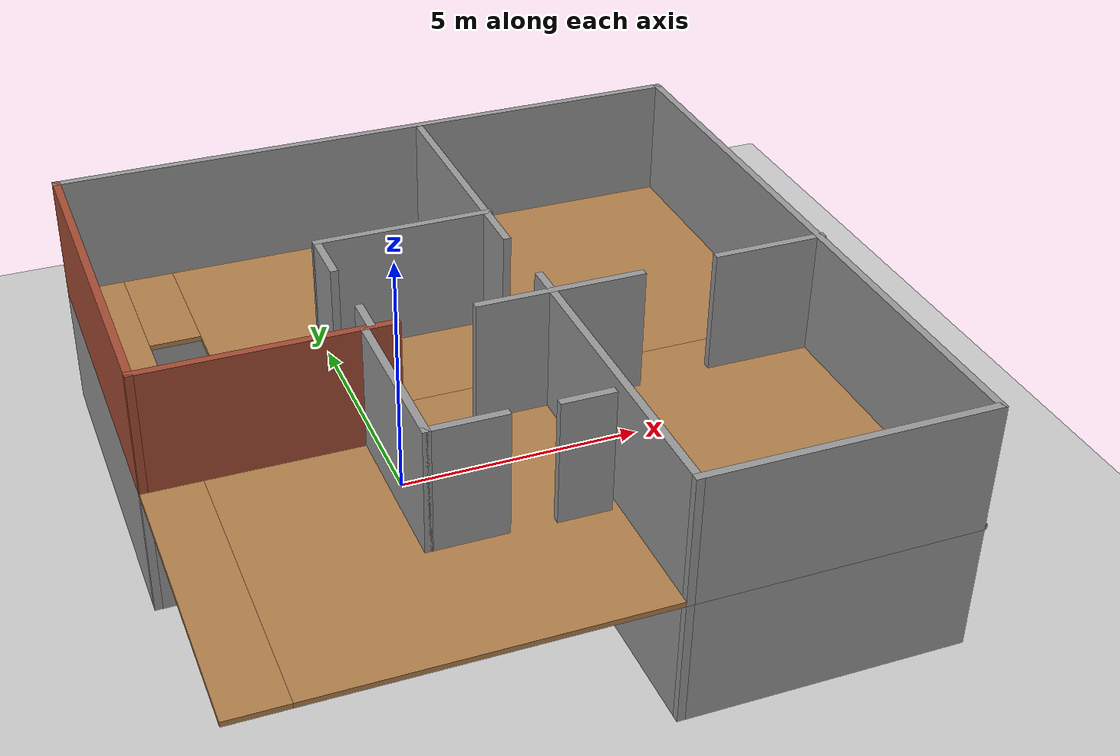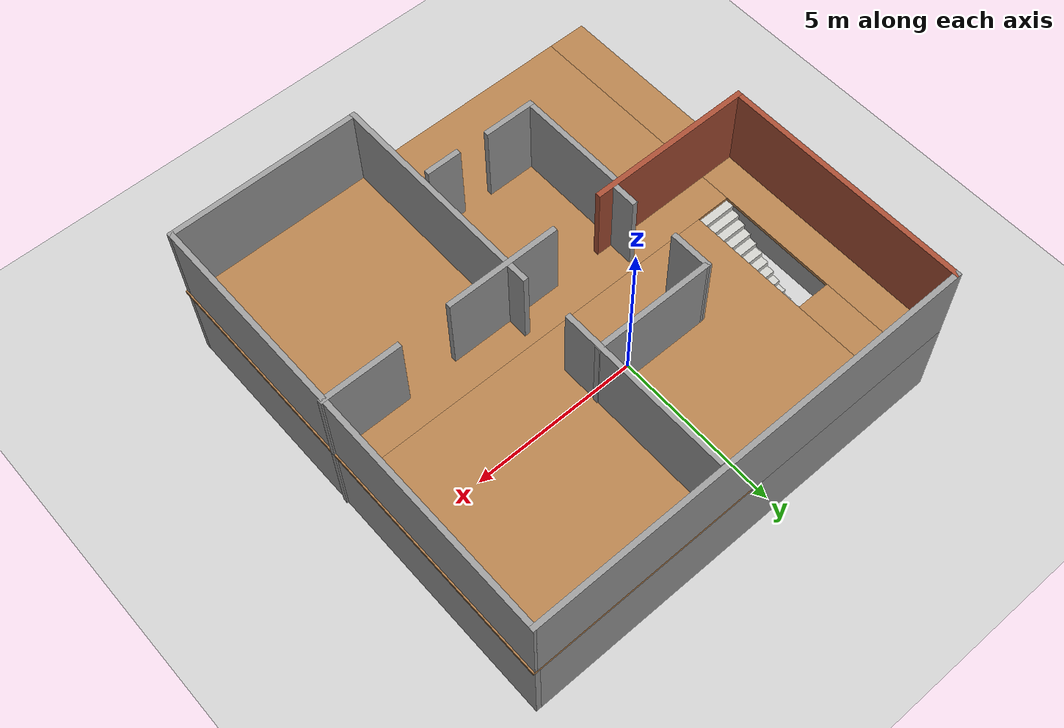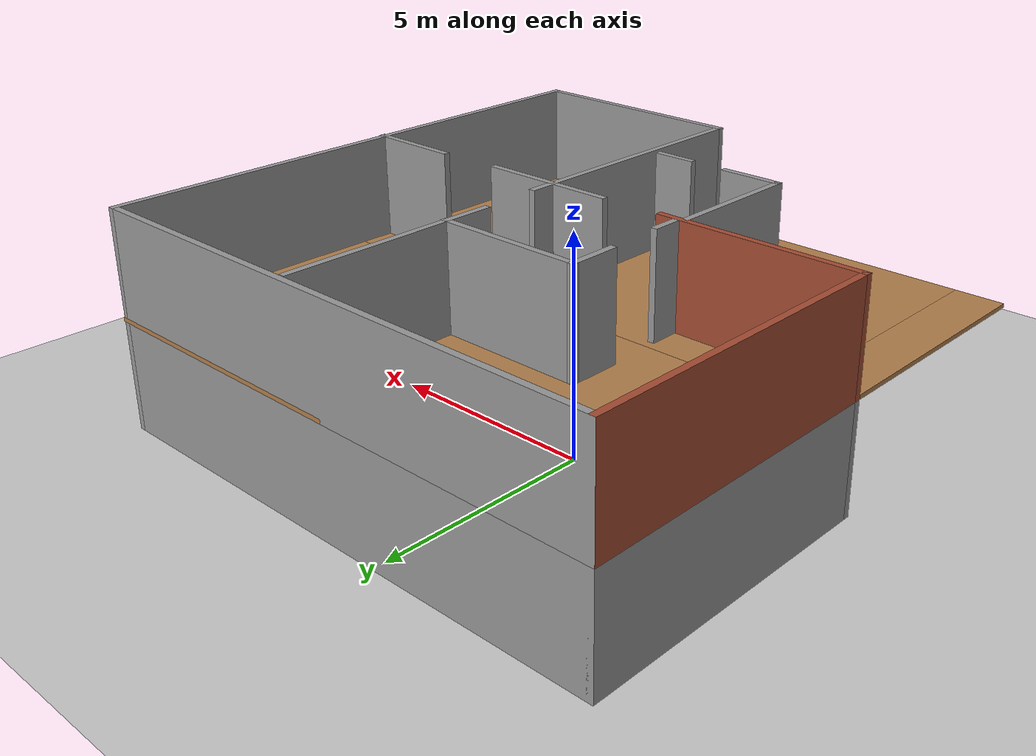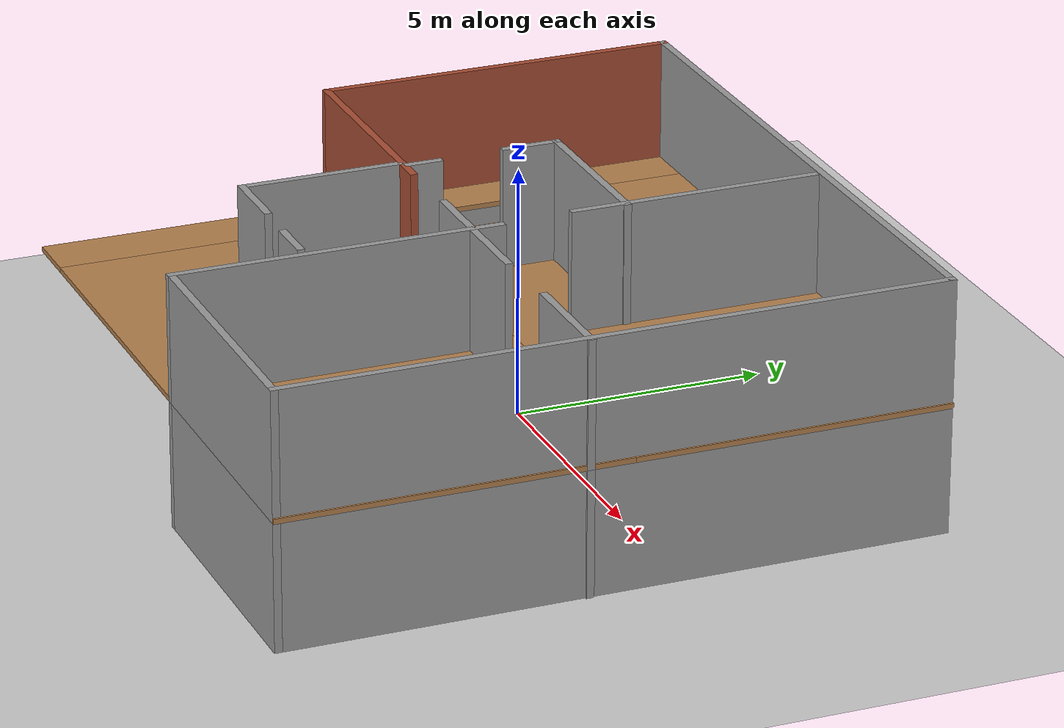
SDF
<sdf version="1.6">
 <world name="default">
  <light name="sun" type="directional">
   <pose>0 0 10 0 -0 0</pose>
   <diffuse>0.8 0.8 0.8 1</diffuse>
   <specular>0.2 0.2 0.2 1</specular>
   <attenuation>
    <range>1000</range>
    <constant>0.9</constant>
    <linear>0.01</linear>
    <quadratic>0.001</quadratic>
   </attenuation>
   <direction>-0.5 0.1 -0.9</direction>
  </light>
  <model name="ground_plane">
   <static>1</static>
   <link name="link">
    <collision name="collision">
     <geometry><plane><normal>0 0 1</normal><size>100 100</size></plane></geometry>
     <surface><friction><ode><mu>100</mu><mu2>50</mu2></ode></friction></surface>
    </collision>
    <visual name="visual">
     <cast_shadows>0</cast_shadows>
     <geometry><plane><normal>0 0 1</normal><size>100 100</size></plane></geometry>
     <material>
      <script><uri>file://media/materials/scripts/gazebo.material</uri><name>Gazebo/Grey</name></script>
     </material>
    </visual>
   </link>
  </model>
  <gravity>0 0 -9.8</gravity>
  <magnetic_field>6e-06 2.3e-05 -4.2e-05</magnetic_field>
  <atmosphere type="adiabatic"/>
  <physics name="default_physics" default="0" type="ode">
   <max_step_size>0.001</max_step_size>
   <real_time_factor>1</real_time_factor>
   <real_time_update_rate>1000</real_time_update_rate>
  </physics>
  <scene><ambient>0.4 0.4 0.4 1</ambient><background>0.7 0.7 0.7 1</background><shadows>1</shadows></scene>
  <audio><device>default</device></audio>
  <spherical_coordinates>
   <surface_model>EARTH_WGS84</surface_model>
   <latitude_deg>0</latitude_deg>
   <longitude_deg>0</longitude_deg>
   <elevation>0</elevation>
   <heading_deg>0</heading_deg>
  </spherical_coordinates>
  <model name="house2floor">
   <pose>1.24999 -1.21065 0 0 -0 0</pose>
   <link name="Floor_0">
    <pose>-1e-06 1e-06 2.5 0 -0 0</pose>
    <visual name="Floor_0_Visual_0">
     <pose>-5.96419 0 0.05 0 -0 0</pose>
     <geometry><box><size>1.11308 13 0.1</size></box></geometry>
     <material>
      <script><uri>file://media/materials/scripts/gazebo.material</uri><name>Gazebo/Wood</name></script>
      <ambient>1 1 1 1</ambient>
     </material>
     <meta><layer>1</layer></meta>
    </visual>
    <collision name="Floor_0_Collision_0">
     <geometry><box><size>1.11308 13 0.1</size></box></geometry>
     <pose>-5.96419 0 0.05 0 -0 0</pose>
    </collision>
    <visual name="Floor_0_Visual_1">
     <pose>0.55654 -3.10443 0.05 0 -0 0</pose>
     <geometry><box><size>11.9284 6.79114 0.1</size></box></geometry>
     <material>
      <script><uri>file://media/materials/scripts/gazebo.material</uri><name>Gazebo/Wood</name></script>
      <ambient>1 1 1 1</ambient>
     </material>
     <meta><layer>1</layer></meta>
    </visual>
    <collision name="Floor_0_Collision_1">
     <geometry><box><size>11.9284 6.79114 0.1</size></box></geometry>
     <pose>0.55654 -3.10443 0.05 0 -0 0</pose>
    </collision>
    <visual name="Floor_0_Visual_2">
     <pose>1.05654 3.39557 0.05 0 -0 0</pose>
     <geometry><box><size>10.9284 6.20886 0.1</size></box></geometry>
     <material>
      <script><uri>file://media/materials/scripts/gazebo.material</uri><name>Gazebo/Wood</name></script>
      <ambient>1 1 1 1</ambient>
     </material>
     <meta><layer>1</layer></meta>
    </visual>
    <collision name="Floor_0_Collision_2">
     <geometry><box><size>10.9284 6.20886 0.1</size></box></geometry>
     <pose>1.05654 3.39557 0.05 0 -0 0</pose>
    </collision>
    <visual name="Floor_0_Visual_3">
     <pose>-4.90765 5.14557 0.05 0 -0 0</pose>
     <geometry><box><size>1 2.70886 0.1</size></box></geometry>
     <material>
      <script><uri>file://media/materials/scripts/gazebo.material</uri><name>Gazebo/Wood</name></script>
      <ambient>1 1 1 1</ambient>
     </material>
     <meta><layer>1</layer></meta>
    </visual>
    <collision name="Floor_0_Collision_3">
     <geometry><box><size>1 2.70886 0.1</size></box></geometry>
     <pose>-4.90765 5.14557 0.05 0 -0 0</pose>
    </collision>
   </link>
   <link name="Stairs_2">
    <visual name="Stairs_2_Visual_0">
     <pose>-4.90765 3.67447 0.083333 0 -0 0</pose>
     <geometry><box><size>1 0.233333 0.166667</size></box></geometry>
     <material>
      <script><uri>file://media/materials/scripts/gazebo.material</uri><name>Gazebo/CeilingTiled</name></script>
      <ambient>1 1 1 1</ambient>
     </material>
     <meta><layer>1</layer></meta>
    </visual>
    <collision name="Stairs_2_Collision_0">
     <geometry><box><size>1 0.233333 0.166667</size></box></geometry>
     <pose>-4.90765 3.67447 0.083333 0 -0 0</pose>
    </collision>
    <visual name="Stairs_2_Visual_1">
     <pose>-4.90765 3.44114 0.25 0 -0 0</pose>
     <geometry><box><size>1 0.233333 0.166667</size></box></geometry>
     <material>
      <script><uri>file://media/materials/scripts/gazebo.material</uri><name>Gazebo/CeilingTiled</name></script>
      <ambient>1 1 1 1</ambient>
     </material>
     <meta><layer>1</layer></meta>
    </visual>
    <collision name="Stairs_2_Collision_1">
     <geometry><box><size>1 0.233333 0.166667</size></box></geometry>
     <pose>-4.90765 3.44114 0.25 0 -0 0</pose>
    </collision>
    <visual name="Stairs_2_Visual_2">
     <pose>-4.90765 3.20781 0.416667 0 -0 0</pose>
     <geometry><box><size>1 0.233333 0.166667</size></box></geometry>
     <material>
      <script><uri>file://media/materials/scripts/gazebo.material</uri><name>Gazebo/CeilingTiled</name></script>
      <ambient>1 1 1 1</ambient>
     </material>
     <meta><layer>1</layer></meta>
    </visual>
    <collision name="Stairs_2_Collision_2">
     <geometry><box><size>1 0.233333 0.166667</size></box></geometry>
     <pose>-4.90765 3.20781 0.416667 0 -0 0</pose>
    </collision>
    <visual name="Stairs_2_Visual_3">
     <pose>-4.90765 2.97447 0.583333 0 -0 0</pose>
     <geometry><box><size>1 0.233333 0.166667</size></box></geometry>
     <material>
      <script><uri>file://media/materials/scripts/gazebo.material</uri><name>Gazebo/CeilingTiled</name></script>
      <ambient>1 1 1 1</ambient>
     </material>
     <meta><layer>1</layer></meta>
    </visual>
    <collision name="Stairs_2_Collision_3">
     <geometry><box><size>1 0.233333 0.166667</size></box></geometry>
     <pose>-4.90765 2.97447 0.583333 0 -0 0</pose>
    </collision>
    <visual name="Stairs_2_Visual_4">
     <pose>-4.90765 2.74114 0.75 0 -0 0</pose>
     <geometry><box><size>1 0.233333 0.166667</size></box></geometry>
     <material>
      <script><uri>file://media/materials/scripts/gazebo.material</uri><name>Gazebo/CeilingTiled</name></script>
      <ambient>1 1 1 1</ambient>
     </material>
     <meta><layer>1</layer></meta>
    </visual>
    <collision name="Stairs_2_Collision_4">
     <geometry><box><size>1 0.233333 0.166667</size></box></geometry>
     <pose>-4.90765 2.74114 0.75 0 -0 0</pose>
    </collision>
    <visual name="Stairs_2_Visual_5">
     <pose>-4.90765 2.50781 0.916667 0 -0 0</pose>
     <geometry><box><size>1 0.233333 0.166667</size></box></geometry>
     <material>
      <script><uri>file://media/materials/scripts/gazebo.material</uri><name>Gazebo/CeilingTiled</name></script>
      <ambient>1 1 1 1</ambient>
     </material>
     <meta><layer>1</layer></meta>
    </visual>
    <collision name="Stairs_2_Collision_5">
     <geometry><box><size>1 0.233333 0.166667</size></box></geometry>
     <pose>-4.90765 2.50781 0.916667 0 -0 0</pose>
    </collision>
    <visual name="Stairs_2_Visual_6">
     <pose>-4.90765 2.27447 1.08333 0 -0 0</pose>
     <geometry><box><size>1 0.233333 0.166667</size></box></geometry>
     <material>
      <script><uri>file://media/materials/scripts/gazebo.material</uri><name>Gazebo/CeilingTiled</name></script>
      <ambient>1 1 1 1</ambient>
     </material>
     <meta><layer>1</layer></meta>
    </visual>
    <collision name="Stairs_2_Collision_6">
     <geometry><box><size>1 0.233333 0.166667</size></box></geometry>
     <pose>-4.90765 2.27447 1.08333 0 -0 0</pose>
    </collision>
    <visual name="Stairs_2_Visual_7">
     <pose>-4.90765 2.04114 1.25 0 -0 0</pose>
     <geometry><box><size>1 0.233333 0.166667</size></box></geometry>
     <material>
      <script><uri>file://media/materials/scripts/gazebo.material</uri><name>Gazebo/CeilingTiled</name></script>
      <ambient>1 1 1 1</ambient>
     </material>
     <meta><layer>1</layer></meta>
    </visual>
    <collision name="Stairs_2_Collision_7">
     <geometry><box><size>1 0.233333 0.166667</size></box></geometry>
     <pose>-4.90765 2.04114 1.25 0 -0 0</pose>
    </collision>
    <visual name="Stairs_2_Visual_8">
     <pose>-4.90765 1.80781 1.41667 0 -0 0</pose>
     <geometry><box><size>1 0.233333 0.166667</size></box></geometry>
     <material>
      <script><uri>file://media/materials/scripts/gazebo.material</uri><name>Gazebo/CeilingTiled</name></script>
      <ambient>1 1 1 1</ambient>
     </material>
     <meta><layer>1</layer></meta>
    </visual>
    <collision name="Stairs_2_Collision_8">
     <geometry><box><size>1 0.233333 0.166667</size></box></geometry>
     <pose>-4.90765 1.80781 1.41667 0 -0 0</pose>
    </collision>
    <visual name="Stairs_2_Visual_9">
     <pose>-4.90765 1.57447 1.58333 0 -0 0</pose>
     <geometry><box><size>1 0.233333 0.166667</size></box></geometry>
     <material>
      <script><uri>file://media/materials/scripts/gazebo.material</uri><name>Gazebo/CeilingTiled</name></script>
      <ambient>1 1 1 1</ambient>
     </material>
     <meta><layer>1</layer></meta>
    </visual>
    <collision name="Stairs_2_Collision_9">
     <geometry><box><size>1 0.233333 0.166667</size></box></geometry>
     <pose>-4.90765 1.57447 1.58333 0 -0 0</pose>
    </collision>
    <visual name="Stairs_2_Visual_10">
     <pose>-4.90765 1.34114 1.75 0 -0 0</pose>
     <geometry><box><size>1 0.233333 0.166667</size></box></geometry>
     <material>
      <script><uri>file://media/materials/scripts/gazebo.material</uri><name>Gazebo/CeilingTiled</name></script>
      <ambient>1 1 1 1</ambient>
     </material>
     <meta><layer>1</layer></meta>
    </visual>
    <collision name="Stairs_2_Collision_10">
     <geometry><box><size>1 0.233333 0.166667</size></box></geometry>
     <pose>-4.90765 1.34114 1.75 0 -0 0</pose>
    </collision>
    <visual name="Stairs_2_Visual_11">
     <pose>-4.90765 1.10781 1.91667 0 -0 0</pose>
     <geometry><box><size>1 0.233333 0.166667</size></box></geometry>
     <material>
      <script><uri>file://media/materials/scripts/gazebo.material</uri><name>Gazebo/CeilingTiled</name></script>
      <ambient>1 1 1 1</ambient>
     </material>
     <meta><layer>1</layer></meta>
    </visual>
    <collision name="Stairs_2_Collision_11">
     <geometry><box><size>1 0.233333 0.166667</size></box></geometry>
     <pose>-4.90765 1.10781 1.91667 0 -0 0</pose>
    </collision>
    <visual name="Stairs_2_Visual_12">
     <pose>-4.90765 0.874474 2.08333 0 -0 0</pose>
     <geometry><box><size>1 0.233333 0.166667</size></box></geometry>
     <material>
      <script><uri>file://media/materials/scripts/gazebo.material</uri><name>Gazebo/CeilingTiled</name></script>
      <ambient>1 1 1 1</ambient>
     </material>
     <meta><layer>1</layer></meta>
    </visual>
    <collision name="Stairs_2_Collision_12">
     <geometry><box><size>1 0.233333 0.166667</size></box></geometry>
     <pose>-4.90765 0.874474 2.08333 0 -0 0</pose>
    </collision>
    <visual name="Stairs_2_Visual_13">
     <pose>-4.90765 0.641141 2.25 0 -0 0</pose>
     <geometry><box><size>1 0.233333 0.166667</size></box></geometry>
     <material>
      <script><uri>file://media/materials/scripts/gazebo.material</uri><name>Gazebo/CeilingTiled</name></script>
      <ambient>1 1 1 1</ambient>
     </material>
     <meta><layer>1</layer></meta>
    </visual>
    <collision name="Stairs_2_Collision_13">
     <geometry><box><size>1 0.233333 0.166667</size></box></geometry>
     <pose>-4.90765 0.641141 2.25 0 -0 0</pose>
    </collision>
    <visual name="Stairs_2_Visual_14">
     <pose>-4.90765 0.407808 2.41667 0 -0 0</pose>
     <geometry><box><size>1 0.233333 0.166667</size></box></geometry>
     <material>
      <script><uri>file://media/materials/scripts/gazebo.material</uri><name>Gazebo/CeilingTiled</name></script>
      <ambient>1 1 1 1</ambient>
     </material>
     <meta><layer>1</layer></meta>
    </visual>
    <collision name="Stairs_2_Collision_14">
     <geometry><box><size>1 0.233333 0.166667</size></box></geometry>
     <pose>-4.90765 0.407808 2.41667 0 -0 0</pose>
    </collision>
   </link>
   <link name="Wall_0">
    <collision name="Wall_0_Collision">
     <geometry><box><size>4.75 0.15 2.5</size></box></geometry>
     <pose>0 0 1.25 0 -0 0</pose>
    </collision>
    <visual name="Wall_0_Visual">
     <pose>0 0 1.25 0 -0 0</pose>
     <geometry><box><size>4.75 0.15 2.5</size></box></geometry>
     <material>
      <script><uri>file://media/materials/scripts/gazebo.material</uri><name>Gazebo/Grey</name></script>
      <ambient>1 1 1 1</ambient>
     </material>
     <meta><layer>0</layer></meta>
    </visual>
    <pose>-4.14557 -0.675185 0 0 -0 3.14159</pose>
   </link>
   <link name="Wall_1">
    <collision name="Wall_1_Collision">
     <geometry><box><size>7.25 0.15 2.5</size></box></geometry>
     <pose>0 0 1.25 0 -0 0</pose>
    </collision>
    <visual name="Wall_1_Visual">
     <pose>0 0 1.25 0 -0 0</pose>
     <geometry><box><size>7.25 0.15 2.5</size></box></geometry>
     <material>
      <script><uri>file://media/materials/scripts/gazebo.material</uri><name>Gazebo/Grey</name></script>
      <ambient>1 1 1 1</ambient>
     </material>
     <meta><layer>0</layer></meta>
    </visual>
    <pose>-6.44557 2.87481 0 0 -0 1.5708</pose>
   </link>
   <link name="Wall_11">
    <collision name="Wall_11_Collision">
     <geometry><box><size>1 0.15 2.5</size></box></geometry>
     <pose>0 0 1.25 0 -0 0</pose>
    </collision>
    <visual name="Wall_11_Visual">
     <pose>0 0 1.25 0 -0 0</pose>
     <geometry><box><size>1 0.15 2.5</size></box></geometry>
     <material>
      <script><uri>file://media/materials/scripts/gazebo.material</uri><name>Gazebo/Grey</name></script>
      <ambient>1 1 1 1</ambient>
     </material>
     <meta><layer>0</layer></meta>
    </visual>
    <pose>-2.30289 1.86054 0 0 -0 1.5708</pose>
   </link>
   <link name="Wall_12">
    <collision name="Wall_12_Collision">
     <geometry><box><size>3.25 0.15 2.5</size></box></geometry>
     <pose>0 0 1.25 0 -0 0</pose>
    </collision>
    <visual name="Wall_12_Visual">
     <pose>0 0 1.25 0 -0 0</pose>
     <geometry><box><size>3.25 0.15 2.5</size></box></geometry>
     <material>
      <script><uri>file://media/materials/scripts/gazebo.material</uri><name>Gazebo/Grey</name></script>
      <ambient>1 1 1 1</ambient>
     </material>
     <meta><layer>0</layer></meta>
    </visual>
    <pose>-0.752894 2.28554 0 0 -0 0</pose>
   </link>
   <link name="Wall_14">
    <collision name="Wall_14_Collision">
     <geometry><box><size>0.75 0.15 2.5</size></box></geometry>
     <pose>0 0 1.25 0 -0 0</pose>
    </collision>
    <visual name="Wall_14_Visual">
     <pose>0 0 1.25 0 -0 0</pose>
     <geometry><box><size>0.75 0.15 2.5</size></box></geometry>
     <material>
      <script><uri>file://media/materials/scripts/gazebo.material</uri><name>Gazebo/Grey</name></script>
      <ambient>1 1 1 1</ambient>
     </material>
     <meta><layer>0</layer></meta>
    </visual>
    <pose>-2.33807 -0.201252 0 0 -0 -1.5708</pose>
   </link>
   <link name="Wall_16">
    <collision name="Wall_16_Collision">
     <geometry><box><size>3.25 0.15 2.5</size></box></geometry>
     <pose>0 0 1.25 0 -0 0</pose>
    </collision>
    <visual name="Wall_16_Visual">
     <pose>0 0 1.25 0 -0 0</pose>
     <geometry><box><size>3.25 0.15 2.5</size></box></geometry>
     <material>
      <script><uri>file://media/materials/scripts/gazebo.material</uri><name>Gazebo/Grey</name></script>
      <ambient>1 1 1 1</ambient>
     </material>
     <meta><layer>0</layer></meta>
    </visual>
    <pose>-2.40843 -2.29554 0 0 -0 -1.5708</pose>
   </link>
   <link name="Wall_17">
    <collision name="Wall_17_Collision">
     <geometry><box><size>1.5 0.15 2.5</size></box></geometry>
     <pose>0 0 1.25 0 -0 0</pose>
    </collision>
    <visual name="Wall_17_Visual">
     <pose>0 0 1.25 0 -0 0</pose>
     <geometry><box><size>1.5 0.15 2.5</size></box></geometry>
     <material>
      <script><uri>file://media/materials/scripts/gazebo.material</uri><name>Gazebo/Grey</name></script>
      <ambient>1 1 1 1</ambient>
     </material>
     <meta><layer>0</layer></meta>
    </visual>
    <pose>-1.73343 -3.84554 0 0 -0 0</pose>
   </link>
   <link name="Wall_19">
    <collision name="Wall_19_Collision">
     <geometry><box><size>1 0.15 2.5</size></box></geometry>
     <pose>0 0 1.25 0 -0 0</pose>
    </collision>
    <visual name="Wall_19_Visual">
     <pose>0 0 1.25 0 -0 0</pose>
     <geometry><box><size>1 0.15 2.5</size></box></geometry>
     <material>
      <script><uri>file://media/materials/scripts/gazebo.material</uri><name>Gazebo/Grey</name></script>
      <ambient>1 1 1 1</ambient>
     </material>
     <meta><layer>0</layer></meta>
    </visual>
    <pose>0.338368 -3.87645 0 0 -0 0</pose>
   </link>
   <link name="Wall_2">
    <collision name="Wall_2_Collision">
     <geometry><box><size>13 0.15 2.5</size></box></geometry>
     <pose>0 0 1.25 0 -0 0</pose>
    </collision>
    <visual name="Wall_2_Visual">
     <pose>0 0 1.25 0 -0 0</pose>
     <geometry><box><size>13 0.15 2.5</size></box></geometry>
     <material>
      <script><uri>file://media/materials/scripts/gazebo.material</uri><name>Gazebo/Grey</name></script>
      <ambient>1 1 1 1</ambient>
     </material>
     <meta><layer>0</layer></meta>
    </visual>
    <pose>-0.02057 6.42481 0 0 -0 0</pose>
   </link>
   <link name="Wall_21">
    <collision name="Wall_21_Collision">
     <geometry><box><size>2.25 0.15 2.5</size></box></geometry>
     <pose>0 0 1.25 0 -0 0</pose>
    </collision>
    <visual name="Wall_21_Visual">
     <pose>0 0 1.25 0 -0 0</pose>
     <geometry><box><size>2.25 0.15 2.5</size></box></geometry>
     <material>
      <script><uri>file://media/materials/scripts/gazebo.material</uri><name>Gazebo/Grey</name></script>
      <ambient>1 1 1 1</ambient>
     </material>
     <meta><layer>0</layer></meta>
    </visual>
    <pose>5.39589 -0.569649 0 0 -0 0</pose>
   </link>
   <link name="Wall_23">
    <collision name="Wall_23_Collision">
     <geometry><box><size>4.75 0.15 2.5</size></box></geometry>
     <pose>0 0 1.25 0 -0 0</pose>
    </collision>
    <visual name="Wall_23_Visual">
     <pose>0 0 1.25 0 -0 0</pose>
     <geometry><box><size>4.75 0.15 2.5</size></box></geometry>
     <material>
      <script><uri>file://media/materials/scripts/gazebo.material</uri><name>Gazebo/Bricks</name></script>
      <ambient>1 1 1 1</ambient>
     </material>
     <meta><layer>1</layer></meta>
    </visual>
    <pose>-4.14589 -0.674816 2.5 0 -0 3.14159</pose>
   </link>
   <link name="Wall_24">
    <collision name="Wall_24_Collision">
     <geometry><box><size>7.25 0.15 2.5</size></box></geometry>
     <pose>0 0 1.25 0 -0 0</pose>
    </collision>
    <visual name="Wall_24_Visual">
     <pose>0 0 1.25 0 -0 0</pose>
     <geometry><box><size>7.25 0.15 2.5</size></box></geometry>
     <material>
      <script><uri>file://media/materials/scripts/gazebo.material</uri><name>Gazebo/Bricks</name></script>
      <ambient>1 1 1 1</ambient>
     </material>
     <meta><layer>1</layer></meta>
    </visual>
    <pose>-6.44589 2.87518 2.5 0 -0 1.5708</pose>
   </link>
   <link name="Wall_25">
    <collision name="Wall_25_Collision">
     <geometry><box><size>13 0.15 2.5</size></box></geometry>
     <pose>0 0 1.25 0 -0 0</pose>
    </collision>
    <visual name="Wall_25_Visual">
     <pose>0 0 1.25 0 -0 0</pose>
     <geometry><box><size>13 0.15 2.5</size></box></geometry>
     <material>
      <script><uri>file://media/materials/scripts/gazebo.material</uri><name>Gazebo/Grey</name></script>
      <ambient>1 1 1 1</ambient>
     </material>
     <meta><layer>1</layer></meta>
    </visual>
    <pose>-0.020731 6.425 2.5 0 -0 -2.9e-05</pose>
   </link>
   <link name="Wall_26">
    <collision name="Wall_26_Collision">
     <geometry><box><size>13 0.15 2.5</size></box></geometry>
     <pose>0 0 1.25 0 -0 0</pose>
    </collision>
    <visual name="Wall_26_Visual">
     <pose>0 0 1.25 0 -0 0</pose>
     <geometry><box><size>13 0.15 2.5</size></box></geometry>
     <material>
      <script><uri>file://media/materials/scripts/gazebo.material</uri><name>Gazebo/Grey</name></script>
      <ambient>1 1 1 1</ambient>
     </material>
     <meta><layer>1</layer></meta>
    </visual>
    <pose>6.40443 -0.000185 2.5 0 -0 -1.5708</pose>
   </link>
   <link name="Wall_27">
    <collision name="Wall_27_Collision">
     <geometry><box><size>5.5 0.15 2.5</size></box></geometry>
     <pose>0 0 1.25 0 -0 0</pose>
    </collision>
    <visual name="Wall_27_Visual">
     <pose>0 0 1.25 0 -0 0</pose>
     <geometry><box><size>5.5 0.15 2.5</size></box></geometry>
     <material>
      <script><uri>file://media/materials/scripts/gazebo.material</uri><name>Gazebo/Grey</name></script>
      <ambient>1 1 1 1</ambient>
     </material>
     <meta><layer>1</layer></meta>
    </visual>
    <pose>3.72943 -6.42518 2.5 0 -0 3.14159</pose>
   </link>
   <link name="Wall_28">
    <collision name="Wall_28_Collision">
     <geometry><box><size>6.5 0.15 2.5</size></box></geometry>
     <pose>0 0 1.25 0 -0 0</pose>
    </collision>
    <visual name="Wall_28_Visual">
     <pose>0 0 1.25 0 -0 0</pose>
     <geometry><box><size>6.5 0.15 2.5</size></box></geometry>
     <material>
      <script><uri>file://media/materials/scripts/gazebo.material</uri><name>Gazebo/Grey</name></script>
      <ambient>1 1 1 1</ambient>
     </material>
     <meta><layer>1</layer></meta>
    </visual>
    <pose>1.05443 -3.25019 2.5 0 -0 1.5708</pose>
   </link>
   <link name="Wall_29">
    <collision name="Wall_29_Collision">
     <geometry><box><size>3.25 0.15 2.5</size></box></geometry>
     <pose>0 0 1.25 0 -0 0</pose>
    </collision>
    <visual name="Wall_29_Visual">
     <pose>0 0 1.25 0 -0 0</pose>
     <geometry><box><size>3.25 0.15 2.5</size></box></geometry>
     <material>
      <script><uri>file://media/materials/scripts/gazebo.material</uri><name>Gazebo/Grey</name></script>
      <ambient>1 1 1 1</ambient>
     </material>
     <meta><layer>1</layer></meta>
    </visual>
    <pose>1.21712 -0.640006 2.5 0 -0 0</pose>
   </link>
   <link name="Wall_3">
    <collision name="Wall_3_Collision">
     <geometry><box><size>13 0.15 2.5</size></box></geometry>
     <pose>0 0 1.25 0 -0 0</pose>
    </collision>
    <visual name="Wall_3_Visual">
     <pose>0 0 1.25 0 -0 0</pose>
     <geometry><box><size>13 0.15 2.5</size></box></geometry>
     <material>
      <script><uri>file://media/materials/scripts/gazebo.material</uri><name>Gazebo/Grey</name></script>
      <ambient>1 1 1 1</ambient>
     </material>
     <meta><layer>0</layer></meta>
    </visual>
    <pose>6.40443 -0.000185 0 0 -0 -1.5708</pose>
   </link>
   <link name="Wall_30">
    <collision name="Wall_30_Collision">
     <geometry><box><size>5 0.15 2.5</size></box></geometry>
     <pose>0 0 1.25 0 -0 0</pose>
    </collision>
    <visual name="Wall_30_Visual">
     <pose>0 0 1.25 0 -0 0</pose>
     <geometry><box><size>5 0.15 2.5</size></box></geometry>
     <material>
      <script><uri>file://media/materials/scripts/gazebo.material</uri><name>Gazebo/Grey</name></script>
      <ambient>1 1 1 1</ambient>
     </material>
     <meta><layer>1</layer></meta>
    </visual>
    <pose>0.968731 3.83003 2.5 0 -0 -1.5708</pose>
   </link>
   <link name="Wall_31">
    <collision name="Wall_31_Collision">
     <geometry><box><size>1.19772 0.15 2.5</size></box></geometry>
     <pose>0 0 1.25 0 -0 0</pose>
    </collision>
    <visual name="Wall_31_Visual">
     <pose>0 0 1.25 0 -0 0</pose>
     <geometry><box><size>1.19772 0.15 2.5</size></box></geometry>
     <material>
      <script><uri>file://media/materials/scripts/gazebo.material</uri><name>Gazebo/Grey</name></script>
      <ambient>1 1 1 1</ambient>
     </material>
     <meta><layer>1</layer></meta>
    </visual>
    <pose>-2.35071 1.91377 2.5 0 -0 1.57497</pose>
   </link>
   <link name="Wall_32">
    <collision name="Wall_32_Collision">
     <geometry><box><size>3.5 0.15 2.5</size></box></geometry>
     <pose>0 0 1.25 0 -0 0</pose>
    </collision>
    <visual name="Wall_32_Visual">
     <pose>0 0 1.25 0 -0 0</pose>
     <geometry><box><size>3.5 0.15 2.5</size></box></geometry>
     <material>
      <script><uri>file://media/materials/scripts/gazebo.material</uri><name>Gazebo/Grey</name></script>
      <ambient>1 1 1 1</ambient>
     </material>
     <meta><layer>1</layer></meta>
    </visual>
    <pose>-0.677894 2.43763 2.5 0 -0 0</pose>
   </link>
   <link name="Wall_33">
    <collision name="Wall_33_Collision">
     <geometry><box><size>0.75 0.15 2.5</size></box></geometry>
     <pose>0 0 1.25 0 -0 0</pose>
    </collision>
    <visual name="Wall_33_Visual">
     <pose>0 0 1.25 0 -0 0</pose>
     <geometry><box><size>0.75 0.15 2.5</size></box></geometry>
     <material>
      <script><uri>file://media/materials/scripts/gazebo.material</uri><name>Gazebo/Grey</name></script>
      <ambient>1 1 1 1</ambient>
     </material>
     <meta><layer>1</layer></meta>
    </visual>
    <pose>-2.27724 -0.292504 2.5 0 -0 -1.5708</pose>
   </link>
   <link name="Wall_34">
    <collision name="Wall_34_Collision">
     <geometry><box><size>3.25 0.15 2.5</size></box></geometry>
     <pose>0 0 1.25 0 -0 0</pose>
    </collision>
    <visual name="Wall_34_Visual">
     <pose>0 0 1.25 0 -0 0</pose>
     <geometry><box><size>3.25 0.15 2.5</size></box></geometry>
     <material>
      <script><uri>file://media/materials/scripts/gazebo.material</uri><name>Gazebo/Grey</name></script>
      <ambient>1 1 1 1</ambient>
     </material>
     <meta><layer>1</layer></meta>
    </visual>
    <pose>-2.40843 -2.29554 2.5 0 -0 -1.5708</pose>
   </link>
   <link name="Wall_35">
    <collision name="Wall_35_Collision">
     <geometry><box><size>1.5 0.15 2.5</size></box></geometry>
     <pose>0 0 1.25 0 -0 0</pose>
    </collision>
    <visual name="Wall_35_Visual">
     <pose>0 0 1.25 0 -0 0</pose>
     <geometry><box><size>1.5 0.15 2.5</size></box></geometry>
     <material>
      <script><uri>file://media/materials/scripts/gazebo.material</uri><name>Gazebo/Grey</name></script>
      <ambient>1 1 1 1</ambient>
     </material>
     <meta><layer>1</layer></meta>
    </visual>
    <pose>-1.73343 -3.84554 2.5 0 -0 0</pose>
   </link>
   <link name="Wall_36">
    <collision name="Wall_36_Collision">
     <geometry><box><size>1 0.15 2.5</size></box></geometry>
     <pose>0 0 1.25 0 -0 0</pose>
    </collision>
    <visual name="Wall_36_Visual">
     <pose>0 0 1.25 0 -0 0</pose>
     <geometry><box><size>1 0.15 2.5</size></box></geometry>
     <material>
      <script><uri>file://media/materials/scripts/gazebo.material</uri><name>Gazebo/Grey</name></script>
      <ambient>1 1 1 1</ambient>
     </material>
     <meta><layer>1</layer></meta>
    </visual>
    <pose>0.338368 -3.87645 2.5 0 -0 0</pose>
   </link>
   <link name="Wall_37">
    <collision name="Wall_37_Collision">
     <geometry><box><size>2.25 0.15 2.5</size></box></geometry>
     <pose>0 0 1.25 0 -0 0</pose>
    </collision>
    <visual name="Wall_37_Visual">
     <pose>0 0 1.25 0 -0 0</pose>
     <geometry><box><size>2.25 0.15 2.5</size></box></geometry>
     <material>
      <script><uri>file://media/materials/scripts/gazebo.material</uri><name>Gazebo/Grey</name></script>
      <ambient>1 1 1 1</ambient>
     </material>
     <meta><layer>1</layer></meta>
    </visual>
    <pose>5.39589 -0.569649 2.5 0 -0 0</pose>
   </link>
   <link name="Wall_4">
    <collision name="Wall_4_Collision">
     <geometry><box><size>5.5 0.15 2.5</size></box></geometry>
     <pose>0 0 1.25 0 -0 0</pose>
    </collision>
    <visual name="Wall_4_Visual">
     <pose>0 0 1.25 0 -0 0</pose>
     <geometry><box><size>5.5 0.15 2.5</size></box></geometry>
     <material>
      <script><uri>file://media/materials/scripts/gazebo.material</uri><name>Gazebo/Grey</name></script>
      <ambient>1 1 1 1</ambient>
     </material>
     <meta><layer>0</layer></meta>
    </visual>
    <pose>3.72943 -6.42518 0 0 -0 3.14159</pose>
   </link>
   <link name="Wall_5">
    <collision name="Wall_5_Collision">
     <geometry><box><size>6.5 0.15 2.5</size></box></geometry>
     <pose>0 0 1.25 0 -0 0</pose>
    </collision>
    <visual name="Wall_5_Visual">
     <pose>0 0 1.25 0 -0 0</pose>
     <geometry><box><size>6.5 0.15 2.5</size></box></geometry>
     <material>
      <script><uri>file://media/materials/scripts/gazebo.material</uri><name>Gazebo/Grey</name></script>
      <ambient>1 1 1 1</ambient>
     </material>
     <meta><layer>0</layer></meta>
    </visual>
    <pose>1.05443 -3.25019 0 0 -0 1.5708</pose>
   </link>
   <link name="Wall_7">
    <collision name="Wall_7_Collision">
     <geometry><box><size>3.25 0.15 2.5</size></box></geometry>
     <pose>0 0 1.25 0 -0 0</pose>
    </collision>
    <visual name="Wall_7_Visual">
     <pose>0 0 1.25 0 -0 0</pose>
     <geometry><box><size>3.25 0.15 2.5</size></box></geometry>
     <material>
      <script><uri>file://media/materials/scripts/gazebo.material</uri><name>Gazebo/Grey</name></script>
      <ambient>1 1 1 1</ambient>
     </material>
     <meta><layer>0</layer></meta>
    </visual>
    <pose>1.21712 -0.640006 0 0 -0 0</pose>
   </link>
   <link name="Wall_9">
    <collision name="Wall_9_Collision">
     <geometry><box><size>5 0.15 2.5</size></box></geometry>
     <pose>0 0 1.25 0 -0 0</pose>
    </collision>
    <visual name="Wall_9_Visual">
     <pose>0 0 1.25 0 -0 0</pose>
     <geometry><box><size>5 0.15 2.5</size></box></geometry>
     <material>
      <script><uri>file://media/materials/scripts/gazebo.material</uri><name>Gazebo/Grey</name></script>
      <ambient>1 1 1 1</ambient>
     </material>
     <meta><layer>0</layer></meta>
    </visual>
    <pose>0.968731 3.83003 0 0 -0 -1.5708</pose>
   </link>
   <static>1</static>
  </model>
 </world>
</sdf>
